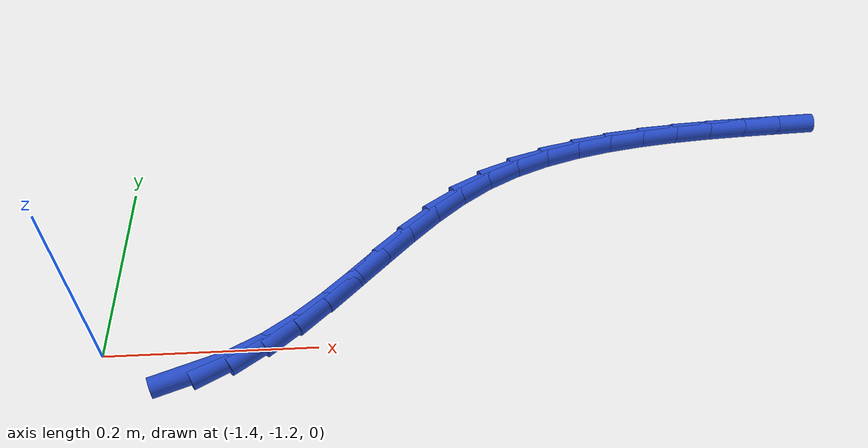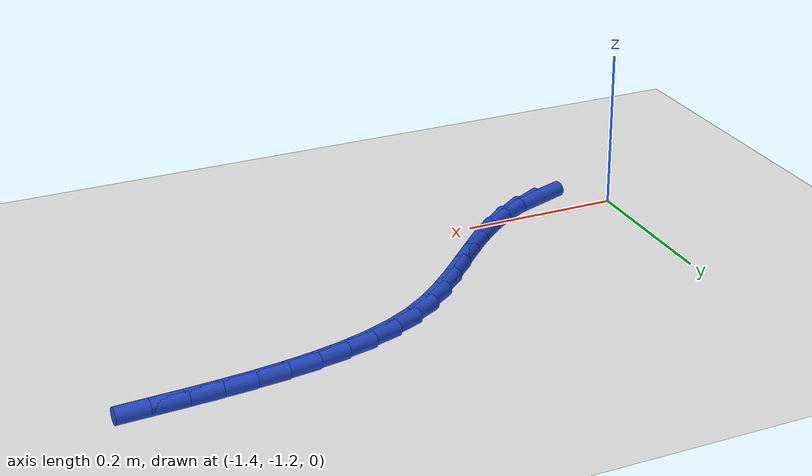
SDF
<sdf version="1.6">
 <world name="default">
  <model name="ground_plane">
   <static>1</static>
   <link name="link">
    <collision name="collision">
     <geometry><plane><normal>0 0 1</normal><size>100 100</size></plane></geometry>
     <surface><friction><ode><mu>100</mu><mu2>50</mu2></ode></friction></surface>
    </collision>
    <visual name="visual">
     <cast_shadows>0</cast_shadows>
     <geometry><plane><normal>0 0 1</normal><size>100 100</size></plane></geometry>
     <material>
      <script><uri>file://media/materials/scripts/gazebo.material</uri><name>Gazebo/WhiteGlow</name></script>
     </material>
    </visual>
   </link>
  </model>
  <model name="line">
   <link name="link_174">
    <pose>-1.3110275703631897 -1.228371074556059 0.01 0 1.57 0.35892647700589436</pose>
    <collision name="collision">
     <geometry><cylinder><radius>0.01</radius><length>0.08</length></cylinder></geometry>
    </collision>
    <visual name="visual">
     <material>
      <script><name>Gazebo/Blue</name><uri>file://media/materials/scripts/gazebo.material</uri></script>
     </material>
     <geometry><cylinder><radius>0.01</radius><length>0.08</length></cylinder></geometry>
    </visual>
   </link>
   <link name="link_175">
    <pose>-1.2783722367726098 -1.2161195207106492 0.01 0 1.57 0.5140379077262229</pose>
    <collision name="collision">
     <geometry><cylinder><radius>0.01</radius><length>0.08</length></cylinder></geometry>
    </collision>
    <visual name="visual">
     <material>
      <script><name>Gazebo/Blue</name><uri>file://media/materials/scripts/gazebo.material</uri></script>
     </material>
     <geometry><cylinder><radius>0.01</radius><length>0.08</length></cylinder></geometry>
    </visual>
   </link>
   <link name="link_176">
    <pose>-1.248172445538852 -1.1990665429122747 0.01 0 1.57 0.6365152632424044</pose>
    <collision name="collision">
     <geometry><cylinder><radius>0.01</radius><length>0.08</length></cylinder></geometry>
    </collision>
    <visual name="visual">
     <material>
      <script><name>Gazebo/Blue</name><uri>file://media/materials/scripts/gazebo.material</uri></script>
     </material>
     <geometry><cylinder><radius>0.01</radius><length>0.08</length></cylinder></geometry>
    </visual>
   </link>
   <link name="link_177">
    <pose>-1.2199160446410189 -1.1781810691033852 0.01 0 1.57 0.7243872564817915</pose>
    <collision name="collision">
     <geometry><cylinder><radius>0.01</radius><length>0.08</length></cylinder></geometry>
    </collision>
    <visual name="visual">
     <material>
      <script><name>Gazebo/Blue</name><uri>file://media/materials/scripts/gazebo.material</uri></script>
     </material>
     <geometry><cylinder><radius>0.01</radius><length>0.08</length></cylinder></geometry>
    </visual>
   </link>
   <link name="link_178">
    <pose>-1.1930834992346557 -1.154438020861678 0.01 0 1.57 0.7795301293895295</pose>
    <collision name="collision">
     <geometry><cylinder><radius>0.01</radius><length>0.08</length></cylinder></geometry>
    </collision>
    <visual name="visual">
     <material>
      <script><name>Gazebo/Blue</name><uri>file://media/materials/scripts/gazebo.material</uri></script>
     </material>
     <geometry><cylinder><radius>0.01</radius><length>0.08</length></cylinder></geometry>
    </visual>
   </link>
   <link name="link_179">
    <pose>-1.1671552744753082 -1.128812319764853 0.01 0 1.57 0.804406106087895</pose>
    <collision name="collision">
     <geometry><cylinder><radius>0.01</radius><length>0.08</length></cylinder></geometry>
    </collision>
    <visual name="visual">
     <material>
      <script><name>Gazebo/Blue</name><uri>file://media/materials/scripts/gazebo.material</uri></script>
     </material>
     <geometry><cylinder><radius>0.01</radius><length>0.08</length></cylinder></geometry>
    </visual>
   </link>
   <link name="link_180">
    <pose>-1.141611835518523 -1.1022788873906084 0.01 0 1.57 0.8005099228934178</pose>
    <collision name="collision">
     <geometry><cylinder><radius>0.01</radius><length>0.08</length></cylinder></geometry>
    </collision>
    <visual name="visual">
     <material>
      <script><name>Gazebo/Blue</name><uri>file://media/materials/scripts/gazebo.material</uri></script>
     </material>
     <geometry><cylinder><radius>0.01</radius><length>0.08</length></cylinder></geometry>
    </visual>
   </link>
   <link name="link_181">
    <pose>-1.1159336475198451 -1.0758126453166432 0.01 0 1.57 0.7678497075513627</pose>
    <collision name="collision">
     <geometry><cylinder><radius>0.01</radius><length>0.08</length></cylinder></geometry>
    </collision>
    <visual name="visual">
     <material>
      <script><name>Gazebo/Blue</name><uri>file://media/materials/scripts/gazebo.material</uri></script>
     </material>
     <geometry><cylinder><radius>0.01</radius><length>0.08</length></cylinder></geometry>
    </visual>
   </link>
   <link name="link_182">
    <pose>-1.0896011756348214 -1.0503885151206562 0.01 0 1.57 0.7050583765462219</pose>
    <collision name="collision">
     <geometry><cylinder><radius>0.01</radius><length>0.08</length></cylinder></geometry>
    </collision>
    <visual name="visual">
     <material>
      <script><name>Gazebo/Blue</name><uri>file://media/materials/scripts/gazebo.material</uri></script>
     </material>
     <geometry><cylinder><radius>0.01</radius><length>0.08</length></cylinder></geometry>
    </visual>
   </link>
   <link name="link_183">
    <pose>-1.0620948850189966 -1.0269814183803458 0.01 0 1.57 0.6101658863985402</pose>
    <collision name="collision">
     <geometry><cylinder><radius>0.01</radius><length>0.08</length></cylinder></geometry>
    </collision>
    <visual name="visual">
     <material>
      <script><name>Gazebo/Blue</name><uri>file://media/materials/scripts/gazebo.material</uri></script>
     </material>
     <geometry><cylinder><radius>0.01</radius><length>0.08</length></cylinder></geometry>
    </visual>
   </link>
   <link name="link_184">
    <pose>-1.0328953456069834 -1.0065660987336904 0.01 0 1.57 0.492577628784279</pose>
    <collision name="collision">
     <geometry><cylinder><radius>0.01</radius><length>0.08</length></cylinder></geometry>
    </collision>
    <visual name="visual">
     <material>
      <script><name>Gazebo/Blue</name><uri>file://media/materials/scripts/gazebo.material</uri></script>
     </material>
     <geometry><cylinder><radius>0.01</radius><length>0.08</length></cylinder></geometry>
    </visual>
   </link>
   <link name="link_185">
    <pose>-1.001666691177242 -0.989805564851064 0.01 0 1.57 0.3852594268571909</pose>
    <collision name="collision">
     <geometry><cylinder><radius>0.01</radius><length>0.08</length></cylinder></geometry>
    </collision>
    <visual name="visual">
     <material>
      <script><name>Gazebo/Blue</name><uri>file://media/materials/scripts/gazebo.material</uri></script>
     </material>
     <geometry><cylinder><radius>0.01</radius><length>0.08</length></cylinder></geometry>
    </visual>
   </link>
   <link name="link_186">
    <pose>-0.9686340929042387 -0.9764100507670234 0.01 0 1.57 0.2954478788688233</pose>
    <collision name="collision">
     <geometry><cylinder><radius>0.01</radius><length>0.08</length></cylinder></geometry>
    </collision>
    <visual name="visual">
     <material>
      <script><name>Gazebo/Blue</name><uri>file://media/materials/scripts/gazebo.material</uri></script>
     </material>
     <geometry><cylinder><radius>0.01</radius><length>0.08</length></cylinder></geometry>
    </visual>
   </link>
   <link name="link_187">
    <pose>-0.9341295342660936 -0.9659083978773507 0.01 0 1.57 0.22285763014819152</pose>
    <collision name="collision">
     <geometry><cylinder><radius>0.01</radius><length>0.08</length></cylinder></geometry>
    </collision>
    <visual name="visual">
     <material>
      <script><name>Gazebo/Blue</name><uri>file://media/materials/scripts/gazebo.material</uri></script>
     </material>
     <geometry><cylinder><radius>0.01</radius><length>0.08</length></cylinder></geometry>
    </visual>
   </link>
   <link name="link_188">
    <pose>-0.8984839032695504 -0.95783031810566 0.01 0 1.57 0.1650889295098485</pose>
    <collision name="collision">
     <geometry><cylinder><radius>0.01</radius><length>0.08</length></cylinder></geometry>
    </collision>
    <visual name="visual">
     <material>
      <script><name>Gazebo/Blue</name><uri>file://media/materials/scripts/gazebo.material</uri></script>
     </material>
     <geometry><cylinder><radius>0.01</radius><length>0.08</length></cylinder></geometry>
    </visual>
   </link>
   <link name="link_189">
    <pose>-0.8619749661436792 -0.9517477371540943 0.01 0 1.57 0.11928254162176771</pose>
    <collision name="collision">
     <geometry><cylinder><radius>0.01</radius><length>0.08</length></cylinder></geometry>
    </collision>
    <visual name="visual">
     <material>
      <script><name>Gazebo/Blue</name><uri>file://media/materials/scripts/gazebo.material</uri></script>
     </material>
     <geometry><cylinder><radius>0.01</radius><length>0.08</length></cylinder></geometry>
    </visual>
   </link>
   <link name="link_190">
    <pose>-0.8248046811085862 -0.9472928223552696 0.01 0 1.57 0.0845704934321309</pose>
    <collision name="collision">
     <geometry><cylinder><radius>0.01</radius><length>0.08</length></cylinder></geometry>
    </collision>
    <visual name="visual">
     <material>
      <script><name>Gazebo/Blue</name><uri>file://media/materials/scripts/gazebo.material</uri></script>
     </material>
     <geometry><cylinder><radius>0.01</radius><length>0.08</length></cylinder></geometry>
    </visual>
   </link>
   <link name="link_191">
    <pose>-0.7871691930253154 -0.9441023606886344 0.01 0 1.57 0.060321110735270515</pose>
    <collision name="collision">
     <geometry><cylinder><radius>0.01</radius><length>0.08</length></cylinder></geometry>
    </collision>
    <visual name="visual">
     <material>
      <script><name>Gazebo/Blue</name><uri>file://media/materials/scripts/gazebo.material</uri></script>
     </material>
     <geometry><cylinder><radius>0.01</radius><length>0.08</length></cylinder></geometry>
    </visual>
   </link>
   <link name="link_192">
    <pose>-0.7492646467549106 -0.9418131391336375 0.01 0 1.57 0.04607877664836698</pose>
    <collision name="collision">
     <geometry><cylinder><radius>0.01</radius><length>0.08</length></cylinder></geometry>
    </collision>
    <visual name="visual">
     <material>
      <script><name>Gazebo/Blue</name><uri>file://media/materials/scripts/gazebo.material</uri></script>
     </material>
     <geometry><cylinder><radius>0.01</radius><length>0.08</length></cylinder></geometry>
    </visual>
   </link>
   <link name="link_193">
    <pose>-0.7112871871584171 -0.9400619446697273 0.01 0 1.57 0.041619395784705325</pose>
    <collision name="collision">
     <geometry><cylinder><radius>0.01</radius><length>0.08</length></cylinder></geometry>
    </collision>
    <visual name="visual">
     <material>
      <script><name>Gazebo/Blue</name><uri>file://media/materials/scripts/gazebo.material</uri></script>
     </material>
     <geometry><cylinder><radius>0.01</radius><length>0.08</length></cylinder></geometry>
    </visual>
   </link>
  </model>
 </world>
</sdf>
